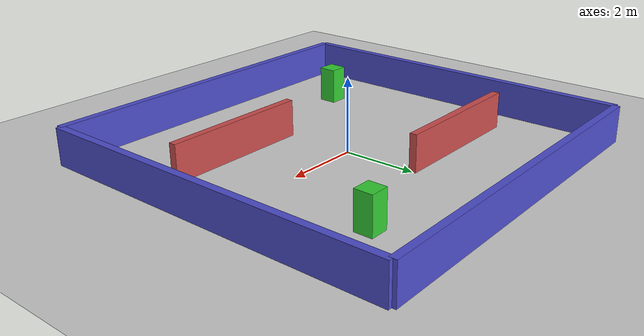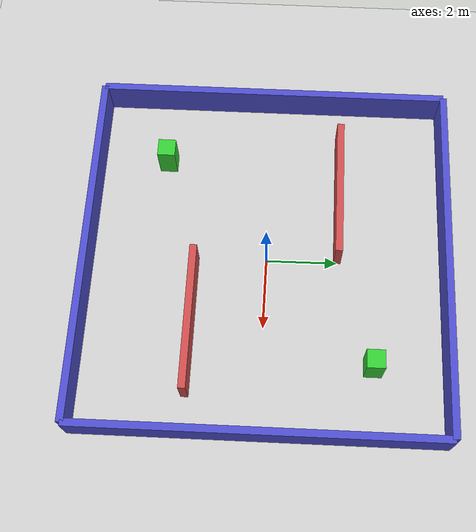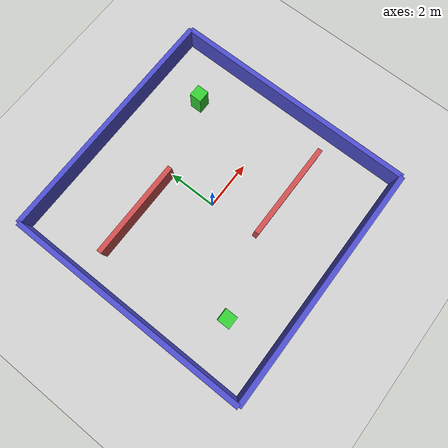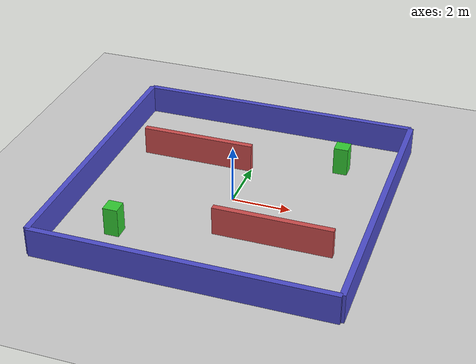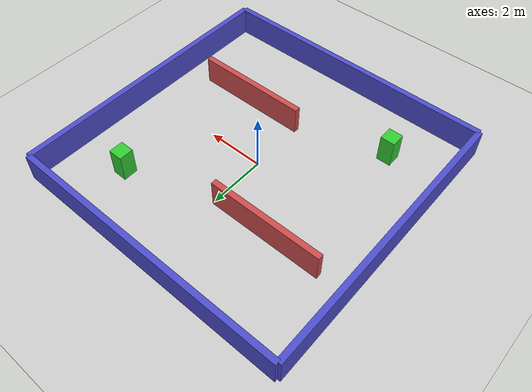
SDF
<?xml version="1.0" ?>
<sdf version="1.8">
  <world name="semantic_world">

    <physics type="ode">
      <real_time_update_rate>1000.0</real_time_update_rate>
      <max_step_size>0.001</max_step_size>
    </physics>

    <plugin filename="gz-sim-physics-system"
            name="gz::sim::systems::Physics"/>
    <plugin filename="gz-sim-sensors-system"
            name="gz::sim::systems::Sensors">
      <render_engine>ogre2</render_engine>
    </plugin>
    <plugin filename="gz-sim-scene-broadcaster-system"
            name="gz::sim::systems::SceneBroadcaster"/>
    <plugin filename="gz-sim-user-commands-system"
            name="gz::sim::systems::UserCommands"/>

    <light name="sun" type="directional">
      <cast_shadows>true</cast_shadows>
      <pose>0 0 10 0 0 0</pose>
      <diffuse>1 1 1 1</diffuse>
      <specular>0.2 0.2 0.2 1</specular>
      <direction>-0.5 0.5 -1</direction>
    </light>

    <model name="ground_plane">
      <static>true</static>
      <link name="link">
        <collision name="collision">
          <geometry><plane><normal>0 0 1</normal></plane></geometry>
        </collision>
        <visual name="visual">
          <geometry>
            <plane><normal>0 0 1</normal><size>20 20</size></plane>
          </geometry>
          <material>
            <ambient>0.8 0.8 0.8 1</ambient>
            <diffuse>0.8 0.8 0.8 1</diffuse>
          </material>
        </visual>
      </link>
    </model>

    <!-- North wall -->
    <model name="wall_north">
      <static>true</static>
      <pose>0 5 0.5 0 0 0</pose>
      <link name="link">
        <collision name="collision">
          <geometry><box><size>10 0.2 1</size></box></geometry>
        </collision>
        <visual name="visual">
          <geometry><box><size>10 0.2 1</size></box></geometry>
          <material><ambient>0.3 0.3 0.8 1</ambient></material>
        </visual>
      </link>
    </model>

    <!-- South wall -->
    <model name="wall_south">
      <static>true</static>
      <pose>0 -5 0.5 0 0 0</pose>
      <link name="link">
        <collision name="collision">
          <geometry><box><size>10 0.2 1</size></box></geometry>
        </collision>
        <visual name="visual">
          <geometry><box><size>10 0.2 1</size></box></geometry>
          <material><ambient>0.3 0.3 0.8 1</ambient></material>
        </visual>
      </link>
    </model>

    <!-- East wall -->
    <model name="wall_east">
      <static>true</static>
      <pose>5 0 0.5 0 0 0</pose>
      <link name="link">
        <collision name="collision">
          <geometry><box><size>0.2 10 1</size></box></geometry>
        </collision>
        <visual name="visual">
          <geometry><box><size>0.2 10 1</size></box></geometry>
          <material><ambient>0.3 0.3 0.8 1</ambient></material>
        </visual>
      </link>
    </model>

    <!-- West wall -->
    <model name="wall_west">
      <static>true</static>
      <pose>-5 0 0.5 0 0 0</pose>
      <link name="link">
        <collision name="collision">
          <geometry><box><size>0.2 10 1</size></box></geometry>
        </collision>
        <visual name="visual">
          <geometry><box><size>0.2 10 1</size></box></geometry>
          <material><ambient>0.3 0.3 0.8 1</ambient></material>
        </visual>
      </link>
    </model>

    <!-- Internal wall 1 -->
    <model name="wall_internal_1">
      <static>true</static>
      <pose>-2 2 0.5 0 0 0</pose>
      <link name="link">
        <collision name="collision">
          <geometry><box><size>4 0.2 1</size></box></geometry>
        </collision>
        <visual name="visual">
          <geometry><box><size>4 0.2 1</size></box></geometry>
          <material><ambient>0.8 0.3 0.3 1</ambient></material>
        </visual>
      </link>
    </model>

    <!-- Internal wall 2 -->
    <model name="wall_internal_2">
      <static>true</static>
      <pose>2 -2 0.5 0 0 0</pose>
      <link name="link">
        <collision name="collision">
          <geometry><box><size>4 0.2 1</size></box></geometry>
        </collision>
        <visual name="visual">
          <geometry><box><size>4 0.2 1</size></box></geometry>
          <material><ambient>0.8 0.3 0.3 1</ambient></material>
        </visual>
      </link>
    </model>

    <!-- Obstacle 1 -->
    <model name="obstacle_1">
      <static>true</static>
      <pose>3 3 0.5 0 0 0</pose>
      <link name="link">
        <collision name="collision">
          <geometry><box><size>0.5 0.5 1</size></box></geometry>
        </collision>
        <visual name="visual">
          <geometry><box><size>0.5 0.5 1</size></box></geometry>
          <material><ambient>0.2 0.8 0.2 1</ambient></material>
        </visual>
      </link>
    </model>

    <!-- Obstacle 2 -->
    <model name="obstacle_2">
      <static>true</static>
      <pose>-3 -3 0.5 0 0 0</pose>
      <link name="link">
        <collision name="collision">
          <geometry><box><size>0.5 0.5 1</size></box></geometry>
        </collision>
        <visual name="visual">
          <geometry><box><size>0.5 0.5 1</size></box></geometry>
          <material><ambient>0.2 0.8 0.2 1</ambient></material>
        </visual>
      </link>
    </model>

  </world>
</sdf>
